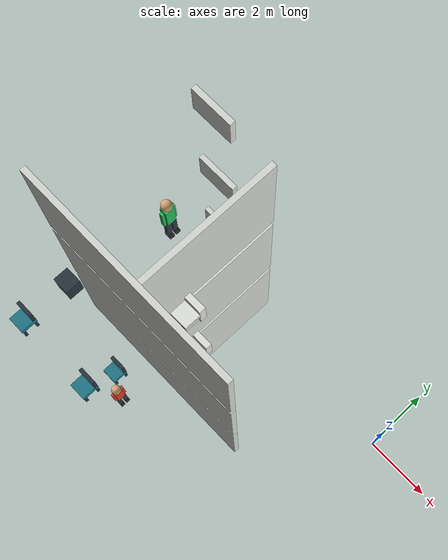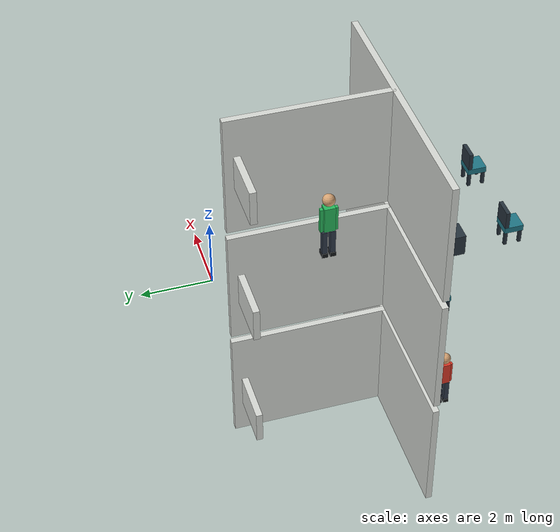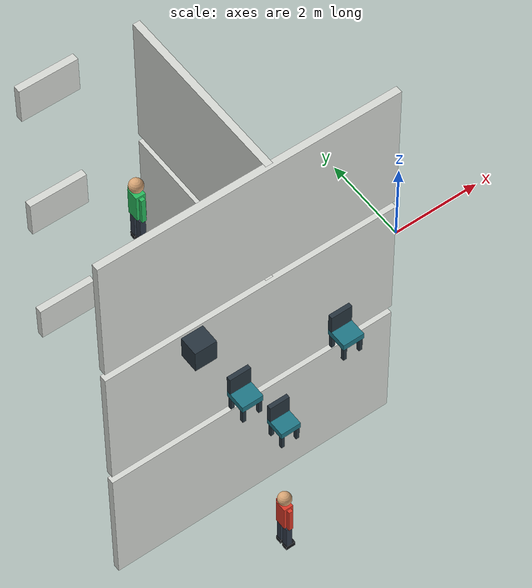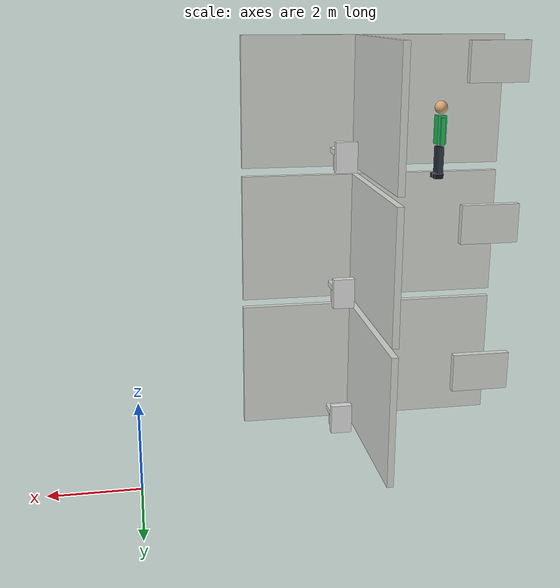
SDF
<sdf version="1.6">
 <world name="three_floor">
  <model name="f1_wall_018">
   <static>true</static>
   <pose>-5.7 -3 1.5 0 0 0</pose>
   <link name="f1_wall_018_link">
    <collision name="f1_wall_018_collision"><geometry><box><size>6.2 0.15 3</size></box></geometry></collision>
    <visual name="f1_wall_018_visual">
     <geometry><box><size>6.2 0.15 3</size></box></geometry>
     <material><ambient>.84 .85 .83 1</ambient><diffuse>.84 .85 .83 1</diffuse></material>
    </visual>
   </link>
  </model>
  <model name="f1_wall_020">
   <static>true</static>
   <pose>-5.3 -1.1 1.5 0 0 0</pose>
   <link name="f1_wall_020_link">
    <collision name="f1_wall_020_collision"><geometry><box><size>0.15 3.8 3</size></box></geometry></collision>
    <visual name="f1_wall_020_visual">
     <geometry><box><size>0.15 3.8 3</size></box></geometry>
     <material><ambient>.84 .85 .83 1</ambient><diffuse>.84 .85 .83 1</diffuse></material>
    </visual>
   </link>
  </model>
  <model name="f1_lintel_south_west_1">
   <static>true</static>
   <pose>-7.15 0.8 2.6 0 0 0</pose>
   <link name="f1_lintel_south_west_1_link">
    <collision name="f1_lintel_south_west_1_collision">
     <geometry><box><size>1.2 0.15 0.8</size></box></geometry>
    </collision>
    <visual name="f1_lintel_south_west_1_visual">
     <geometry><box><size>1.2 0.15 0.8</size></box></geometry>
     <material><ambient>.84 .85 .83 1</ambient><diffuse>.84 .85 .83 1</diffuse></material>
    </visual>
   </link>
  </model>
  <model name="f2_wall_018">
   <static>true</static>
   <pose>-5.7 -3 4.7 0 0 0</pose>
   <link name="f2_wall_018_link">
    <collision name="f2_wall_018_collision"><geometry><box><size>6.2 0.15 3</size></box></geometry></collision>
    <visual name="f2_wall_018_visual">
     <geometry><box><size>6.2 0.15 3</size></box></geometry>
     <material><ambient>.84 .85 .83 1</ambient><diffuse>.84 .85 .83 1</diffuse></material>
    </visual>
   </link>
  </model>
  <model name="f2_wall_020">
   <static>true</static>
   <pose>-5.3 -1.1 4.7 0 0 0</pose>
   <link name="f2_wall_020_link">
    <collision name="f2_wall_020_collision"><geometry><box><size>0.15 3.8 3</size></box></geometry></collision>
    <visual name="f2_wall_020_visual">
     <geometry><box><size>0.15 3.8 3</size></box></geometry>
     <material><ambient>.84 .85 .83 1</ambient><diffuse>.84 .85 .83 1</diffuse></material>
    </visual>
   </link>
  </model>
  <model name="f2_lintel_south_west_1">
   <static>true</static>
   <pose>-7.15 0.8 5.8 0 0 0</pose>
   <link name="f2_lintel_south_west_1_link">
    <collision name="f2_lintel_south_west_1_collision">
     <geometry><box><size>1.2 0.15 0.8</size></box></geometry>
    </collision>
    <visual name="f2_lintel_south_west_1_visual">
     <geometry><box><size>1.2 0.15 0.8</size></box></geometry>
     <material><ambient>.84 .85 .83 1</ambient><diffuse>.84 .85 .83 1</diffuse></material>
    </visual>
   </link>
  </model>
  <model name="f3_wall_018">
   <static>true</static>
   <pose>-5.7 -3 7.9 0 0 0</pose>
   <link name="f3_wall_018_link">
    <collision name="f3_wall_018_collision"><geometry><box><size>6.2 0.15 3</size></box></geometry></collision>
    <visual name="f3_wall_018_visual">
     <geometry><box><size>6.2 0.15 3</size></box></geometry>
     <material><ambient>.84 .85 .83 1</ambient><diffuse>.84 .85 .83 1</diffuse></material>
    </visual>
   </link>
  </model>
  <model name="f3_wall_020">
   <static>true</static>
   <pose>-5.3 -1.1 7.9 0 0 0</pose>
   <link name="f3_wall_020_link">
    <collision name="f3_wall_020_collision"><geometry><box><size>0.15 3.8 3</size></box></geometry></collision>
    <visual name="f3_wall_020_visual">
     <geometry><box><size>0.15 3.8 3</size></box></geometry>
     <material><ambient>.84 .85 .83 1</ambient><diffuse>.84 .85 .83 1</diffuse></material>
    </visual>
   </link>
  </model>
  <model name="f3_lintel_south_west_1">
   <static>true</static>
   <pose>-7.15 0.8 9 0 0 0</pose>
   <link name="f3_lintel_south_west_1_link">
    <collision name="f3_lintel_south_west_1_collision">
     <geometry><box><size>1.2 0.15 0.8</size></box></geometry>
    </collision>
    <visual name="f3_lintel_south_west_1_visual">
     <geometry><box><size>1.2 0.15 0.8</size></box></geometry>
     <material><ambient>.84 .85 .83 1</ambient><diffuse>.84 .85 .83 1</diffuse></material>
    </visual>
   </link>
  </model>
  <model name="f1_s2_furniture_08_toilet">
   <static>true</static>
   <pose>-4.85 -2.25 0 0 0 0</pose>
   <link name="f1_s2_furniture_08_toilet_link">
    <collision name="f1_s2_furniture_08_toilet_link_base_collision">
     <pose>0 0 0.22 0 0 0</pose>
     <geometry><box><size>0.375 0.52 0.44</size></box></geometry>
    </collision>
    <visual name="f1_s2_furniture_08_toilet_link_base_visual">
     <pose>0 0 0.22 0 0 0</pose>
     <geometry><box><size>0.375 0.52 0.44</size></box></geometry>
     <material><ambient>0.88 0.89 0.88 1</ambient><diffuse>0.88 0.89 0.88 1</diffuse></material>
    </visual>
    <collision name="f1_s2_furniture_08_toilet_link_bowl_collision">
     <pose>0 -0.08 0.45 0 0 0</pose>
     <geometry><box><size>0.5 0.455 0.12</size></box></geometry>
    </collision>
    <visual name="f1_s2_furniture_08_toilet_link_bowl_visual">
     <pose>0 -0.08 0.45 0 0 0</pose>
     <geometry><box><size>0.5 0.455 0.12</size></box></geometry>
     <material><ambient>0.88 0.89 0.88 1</ambient><diffuse>0.88 0.89 0.88 1</diffuse></material>
    </visual>
    <collision name="f1_s2_furniture_08_toilet_link_cistern_collision">
     <pose>0 0.2275 0.35 0 0 0</pose>
     <geometry><box><size>0.5 0.18 0.7</size></box></geometry>
    </collision>
    <visual name="f1_s2_furniture_08_toilet_link_cistern_visual">
     <pose>0 0.2275 0.35 0 0 0</pose>
     <geometry><box><size>0.5 0.18 0.7</size></box></geometry>
     <material><ambient>0.88 0.89 0.88 1</ambient><diffuse>0.88 0.89 0.88 1</diffuse></material>
    </visual>
   </link>
  </model>
  <model name="f2_s2_furniture_31_seat">
   <static>true</static>
   <pose>-5.85 -4.17 3.2 0 0 0</pose>
   <link name="f2_s2_furniture_31_seat_link">
    <collision name="f2_s2_furniture_31_seat_link_seat_collision">
     <pose>0 0 0.4 0 0 0</pose>
     <geometry><box><size>0.42 0.42 0.14</size></box></geometry>
    </collision>
    <visual name="f2_s2_furniture_31_seat_link_seat_visual">
     <pose>0 0 0.4 0 0 0</pose>
     <geometry><box><size>0.42 0.42 0.14</size></box></geometry>
     <material><ambient>0.12 0.46 0.52 1</ambient><diffuse>0.12 0.46 0.52 1</diffuse></material>
    </visual>
    <collision name="f2_s2_furniture_31_seat_link_back_collision">
     <pose>0 0.165 0.68 0 0 0</pose>
     <geometry><box><size>0.42 0.09 0.42</size></box></geometry>
    </collision>
    <visual name="f2_s2_furniture_31_seat_link_back_visual">
     <pose>0 0.165 0.68 0 0 0</pose>
     <geometry><box><size>0.42 0.09 0.42</size></box></geometry>
     <material><ambient>0.15 0.2 0.24 1</ambient><diffuse>0.15 0.2 0.24 1</diffuse></material>
    </visual>
    <collision name="f2_s2_furniture_31_seat_link_leg_-0.15999999999999998_-0.15999999999999998_collision">
     <pose>-0.16 -0.16 0.165 0 0 0</pose>
     <geometry><box><size>0.07 0.07 0.33</size></box></geometry>
    </collision>
    <visual name="f2_s2_furniture_31_seat_link_leg_-0.15999999999999998_-0.15999999999999998_visual">
     <pose>-0.16 -0.16 0.165 0 0 0</pose>
     <geometry><box><size>0.07 0.07 0.33</size></box></geometry>
     <material><ambient>0.15 0.2 0.24 1</ambient><diffuse>0.15 0.2 0.24 1</diffuse></material>
    </visual>
    <collision name="f2_s2_furniture_31_seat_link_leg_-0.15999999999999998_0.15999999999999998_collision">
     <pose>-0.16 0.16 0.165 0 0 0</pose>
     <geometry><box><size>0.07 0.07 0.33</size></box></geometry>
    </collision>
    <visual name="f2_s2_furniture_31_seat_link_leg_-0.15999999999999998_0.15999999999999998_visual">
     <pose>-0.16 0.16 0.165 0 0 0</pose>
     <geometry><box><size>0.07 0.07 0.33</size></box></geometry>
     <material><ambient>0.15 0.2 0.24 1</ambient><diffuse>0.15 0.2 0.24 1</diffuse></material>
    </visual>
    <collision name="f2_s2_furniture_31_seat_link_leg_0.15999999999999998_-0.15999999999999998_collision">
     <pose>0.16 -0.16 0.165 0 0 0</pose>
     <geometry><box><size>0.07 0.07 0.33</size></box></geometry>
    </collision>
    <visual name="f2_s2_furniture_31_seat_link_leg_0.15999999999999998_-0.15999999999999998_visual">
     <pose>0.16 -0.16 0.165 0 0 0</pose>
     <geometry><box><size>0.07 0.07 0.33</size></box></geometry>
     <material><ambient>0.15 0.2 0.24 1</ambient><diffuse>0.15 0.2 0.24 1</diffuse></material>
    </visual>
    <collision name="f2_s2_furniture_31_seat_link_leg_0.15999999999999998_0.15999999999999998_collision">
     <pose>0.16 0.16 0.165 0 0 0</pose>
     <geometry><box><size>0.07 0.07 0.33</size></box></geometry>
    </collision>
    <visual name="f2_s2_furniture_31_seat_link_leg_0.15999999999999998_0.15999999999999998_visual">
     <pose>0.16 0.16 0.165 0 0 0</pose>
     <geometry><box><size>0.07 0.07 0.33</size></box></geometry>
     <material><ambient>0.15 0.2 0.24 1</ambient><diffuse>0.15 0.2 0.24 1</diffuse></material>
    </visual>
   </link>
  </model>
  <model name="f2_s2_furniture_34_toilet">
   <static>true</static>
   <pose>-4.85 -2.25 3.2 0 0 0</pose>
   <link name="f2_s2_furniture_34_toilet_link">
    <collision name="f2_s2_furniture_34_toilet_link_base_collision">
     <pose>0 0 0.22 0 0 0</pose>
     <geometry><box><size>0.375 0.52 0.44</size></box></geometry>
    </collision>
    <visual name="f2_s2_furniture_34_toilet_link_base_visual">
     <pose>0 0 0.22 0 0 0</pose>
     <geometry><box><size>0.375 0.52 0.44</size></box></geometry>
     <material><ambient>0.88 0.89 0.88 1</ambient><diffuse>0.88 0.89 0.88 1</diffuse></material>
    </visual>
    <collision name="f2_s2_furniture_34_toilet_link_bowl_collision">
     <pose>0 -0.08 0.45 0 0 0</pose>
     <geometry><box><size>0.5 0.455 0.12</size></box></geometry>
    </collision>
    <visual name="f2_s2_furniture_34_toilet_link_bowl_visual">
     <pose>0 -0.08 0.45 0 0 0</pose>
     <geometry><box><size>0.5 0.455 0.12</size></box></geometry>
     <material><ambient>0.88 0.89 0.88 1</ambient><diffuse>0.88 0.89 0.88 1</diffuse></material>
    </visual>
    <collision name="f2_s2_furniture_34_toilet_link_cistern_collision">
     <pose>0 0.2275 0.35 0 0 0</pose>
     <geometry><box><size>0.5 0.18 0.7</size></box></geometry>
    </collision>
    <visual name="f2_s2_furniture_34_toilet_link_cistern_visual">
     <pose>0 0.2275 0.35 0 0 0</pose>
     <geometry><box><size>0.5 0.18 0.7</size></box></geometry>
     <material><ambient>0.88 0.89 0.88 1</ambient><diffuse>0.88 0.89 0.88 1</diffuse></material>
    </visual>
   </link>
  </model>
  <model name="f3_s2_furniture_57_seat">
   <static>true</static>
   <pose>-7.3 -5.03 6.4 0 0 0</pose>
   <link name="f3_s2_furniture_57_seat_link">
    <collision name="f3_s2_furniture_57_seat_link_seat_collision">
     <pose>0 0 0.4 0 0 0</pose>
     <geometry><box><size>0.43 0.43 0.14</size></box></geometry>
    </collision>
    <visual name="f3_s2_furniture_57_seat_link_seat_visual">
     <pose>0 0 0.4 0 0 0</pose>
     <geometry><box><size>0.43 0.43 0.14</size></box></geometry>
     <material><ambient>0.12 0.46 0.52 1</ambient><diffuse>0.12 0.46 0.52 1</diffuse></material>
    </visual>
    <collision name="f3_s2_furniture_57_seat_link_back_collision">
     <pose>0 0.17 0.675 0 0 0</pose>
     <geometry><box><size>0.43 0.09 0.41</size></box></geometry>
    </collision>
    <visual name="f3_s2_furniture_57_seat_link_back_visual">
     <pose>0 0.17 0.675 0 0 0</pose>
     <geometry><box><size>0.43 0.09 0.41</size></box></geometry>
     <material><ambient>0.15 0.2 0.24 1</ambient><diffuse>0.15 0.2 0.24 1</diffuse></material>
    </visual>
    <collision name="f3_s2_furniture_57_seat_link_leg_-0.16499999999999998_-0.16499999999999998_collision">
     <pose>-0.165 -0.165 0.165 0 0 0</pose>
     <geometry><box><size>0.07 0.07 0.33</size></box></geometry>
    </collision>
    <visual name="f3_s2_furniture_57_seat_link_leg_-0.16499999999999998_-0.16499999999999998_visual">
     <pose>-0.165 -0.165 0.165 0 0 0</pose>
     <geometry><box><size>0.07 0.07 0.33</size></box></geometry>
     <material><ambient>0.15 0.2 0.24 1</ambient><diffuse>0.15 0.2 0.24 1</diffuse></material>
    </visual>
    <collision name="f3_s2_furniture_57_seat_link_leg_-0.16499999999999998_0.16499999999999998_collision">
     <pose>-0.165 0.165 0.165 0 0 0</pose>
     <geometry><box><size>0.07 0.07 0.33</size></box></geometry>
    </collision>
    <visual name="f3_s2_furniture_57_seat_link_leg_-0.16499999999999998_0.16499999999999998_visual">
     <pose>-0.165 0.165 0.165 0 0 0</pose>
     <geometry><box><size>0.07 0.07 0.33</size></box></geometry>
     <material><ambient>0.15 0.2 0.24 1</ambient><diffuse>0.15 0.2 0.24 1</diffuse></material>
    </visual>
    <collision name="f3_s2_furniture_57_seat_link_leg_0.16499999999999998_-0.16499999999999998_collision">
     <pose>0.165 -0.165 0.165 0 0 0</pose>
     <geometry><box><size>0.07 0.07 0.33</size></box></geometry>
    </collision>
    <visual name="f3_s2_furniture_57_seat_link_leg_0.16499999999999998_-0.16499999999999998_visual">
     <pose>0.165 -0.165 0.165 0 0 0</pose>
     <geometry><box><size>0.07 0.07 0.33</size></box></geometry>
     <material><ambient>0.15 0.2 0.24 1</ambient><diffuse>0.15 0.2 0.24 1</diffuse></material>
    </visual>
    <collision name="f3_s2_furniture_57_seat_link_leg_0.16499999999999998_0.16499999999999998_collision">
     <pose>0.165 0.165 0.165 0 0 0</pose>
     <geometry><box><size>0.07 0.07 0.33</size></box></geometry>
    </collision>
    <visual name="f3_s2_furniture_57_seat_link_leg_0.16499999999999998_0.16499999999999998_visual">
     <pose>0.165 0.165 0.165 0 0 0</pose>
     <geometry><box><size>0.07 0.07 0.33</size></box></geometry>
     <material><ambient>0.15 0.2 0.24 1</ambient><diffuse>0.15 0.2 0.24 1</diffuse></material>
    </visual>
   </link>
  </model>
  <model name="f3_s2_furniture_59_seat">
   <static>true</static>
   <pose>-5.2 -5.03 6.4 0 0 0</pose>
   <link name="f3_s2_furniture_59_seat_link">
    <collision name="f3_s2_furniture_59_seat_link_seat_collision">
     <pose>0 0 0.4 0 0 0</pose>
     <geometry><box><size>0.43 0.43 0.14</size></box></geometry>
    </collision>
    <visual name="f3_s2_furniture_59_seat_link_seat_visual">
     <pose>0 0 0.4 0 0 0</pose>
     <geometry><box><size>0.43 0.43 0.14</size></box></geometry>
     <material><ambient>0.12 0.46 0.52 1</ambient><diffuse>0.12 0.46 0.52 1</diffuse></material>
    </visual>
    <collision name="f3_s2_furniture_59_seat_link_back_collision">
     <pose>0 0.17 0.675 0 0 0</pose>
     <geometry><box><size>0.43 0.09 0.41</size></box></geometry>
    </collision>
    <visual name="f3_s2_furniture_59_seat_link_back_visual">
     <pose>0 0.17 0.675 0 0 0</pose>
     <geometry><box><size>0.43 0.09 0.41</size></box></geometry>
     <material><ambient>0.15 0.2 0.24 1</ambient><diffuse>0.15 0.2 0.24 1</diffuse></material>
    </visual>
    <collision name="f3_s2_furniture_59_seat_link_leg_-0.16499999999999998_-0.16499999999999998_collision">
     <pose>-0.165 -0.165 0.165 0 0 0</pose>
     <geometry><box><size>0.07 0.07 0.33</size></box></geometry>
    </collision>
    <visual name="f3_s2_furniture_59_seat_link_leg_-0.16499999999999998_-0.16499999999999998_visual">
     <pose>-0.165 -0.165 0.165 0 0 0</pose>
     <geometry><box><size>0.07 0.07 0.33</size></box></geometry>
     <material><ambient>0.15 0.2 0.24 1</ambient><diffuse>0.15 0.2 0.24 1</diffuse></material>
    </visual>
    <collision name="f3_s2_furniture_59_seat_link_leg_-0.16499999999999998_0.16499999999999998_collision">
     <pose>-0.165 0.165 0.165 0 0 0</pose>
     <geometry><box><size>0.07 0.07 0.33</size></box></geometry>
    </collision>
    <visual name="f3_s2_furniture_59_seat_link_leg_-0.16499999999999998_0.16499999999999998_visual">
     <pose>-0.165 0.165 0.165 0 0 0</pose>
     <geometry><box><size>0.07 0.07 0.33</size></box></geometry>
     <material><ambient>0.15 0.2 0.24 1</ambient><diffuse>0.15 0.2 0.24 1</diffuse></material>
    </visual>
    <collision name="f3_s2_furniture_59_seat_link_leg_0.16499999999999998_-0.16499999999999998_collision">
     <pose>0.165 -0.165 0.165 0 0 0</pose>
     <geometry><box><size>0.07 0.07 0.33</size></box></geometry>
    </collision>
    <visual name="f3_s2_furniture_59_seat_link_leg_0.16499999999999998_-0.16499999999999998_visual">
     <pose>0.165 -0.165 0.165 0 0 0</pose>
     <geometry><box><size>0.07 0.07 0.33</size></box></geometry>
     <material><ambient>0.15 0.2 0.24 1</ambient><diffuse>0.15 0.2 0.24 1</diffuse></material>
    </visual>
    <collision name="f3_s2_furniture_59_seat_link_leg_0.16499999999999998_0.16499999999999998_collision">
     <pose>0.165 0.165 0.165 0 0 0</pose>
     <geometry><box><size>0.07 0.07 0.33</size></box></geometry>
    </collision>
    <visual name="f3_s2_furniture_59_seat_link_leg_0.16499999999999998_0.16499999999999998_visual">
     <pose>0.165 0.165 0.165 0 0 0</pose>
     <geometry><box><size>0.07 0.07 0.33</size></box></geometry>
     <material><ambient>0.15 0.2 0.24 1</ambient><diffuse>0.15 0.2 0.24 1</diffuse></material>
    </visual>
   </link>
  </model>
  <model name="f3_s2_furniture_63_toilet">
   <static>true</static>
   <pose>-4.85 -2.25 6.4 0 0 0</pose>
   <link name="f3_s2_furniture_63_toilet_link">
    <collision name="f3_s2_furniture_63_toilet_link_base_collision">
     <pose>0 0 0.22 0 0 0</pose>
     <geometry><box><size>0.375 0.52 0.44</size></box></geometry>
    </collision>
    <visual name="f3_s2_furniture_63_toilet_link_base_visual">
     <pose>0 0 0.22 0 0 0</pose>
     <geometry><box><size>0.375 0.52 0.44</size></box></geometry>
     <material><ambient>0.88 0.89 0.88 1</ambient><diffuse>0.88 0.89 0.88 1</diffuse></material>
    </visual>
    <collision name="f3_s2_furniture_63_toilet_link_bowl_collision">
     <pose>0 -0.08 0.45 0 0 0</pose>
     <geometry><box><size>0.5 0.455 0.12</size></box></geometry>
    </collision>
    <visual name="f3_s2_furniture_63_toilet_link_bowl_visual">
     <pose>0 -0.08 0.45 0 0 0</pose>
     <geometry><box><size>0.5 0.455 0.12</size></box></geometry>
     <material><ambient>0.88 0.89 0.88 1</ambient><diffuse>0.88 0.89 0.88 1</diffuse></material>
    </visual>
    <collision name="f3_s2_furniture_63_toilet_link_cistern_collision">
     <pose>0 0.2275 0.35 0 0 0</pose>
     <geometry><box><size>0.5 0.18 0.7</size></box></geometry>
    </collision>
    <visual name="f3_s2_furniture_63_toilet_link_cistern_visual">
     <pose>0 0.2275 0.35 0 0 0</pose>
     <geometry><box><size>0.5 0.18 0.7</size></box></geometry>
     <material><ambient>0.88 0.89 0.88 1</ambient><diffuse>0.88 0.89 0.88 1</diffuse></material>
    </visual>
   </link>
  </model>
  <model name="f3_s2_furniture_78_box">
   <static>true</static>
   <pose>-7.3 -3.72 6.4 0 0 0</pose>
   <link name="f3_s2_furniture_78_box_link">
    <collision name="f3_s2_furniture_78_box_link_body_collision">
     <pose>0 0 0.25 0 0 0</pose>
     <geometry><box><size>0.45 0.4 0.5</size></box></geometry>
    </collision>
    <visual name="f3_s2_furniture_78_box_link_body_visual">
     <pose>0 0 0.25 0 0 0</pose>
     <geometry><box><size>0.45 0.4 0.5</size></box></geometry>
     <material><ambient>0.15 0.2 0.24 1</ambient><diffuse>0.15 0.2 0.24 1</diffuse></material>
    </visual>
   </link>
  </model>
  <model name="f1_pedestrian">
   <static>true</static>
   <pose>-6 -4.4 0.0 0 0 0</pose>
   <link name="f1_pedestrian_link">
    <collision name="pedestrian_solid">
     <pose>0 0 0.85 0 0 0</pose>
     <geometry><box><size>.36 .42 1.7</size></box></geometry>
    </collision>
    <visual name="head">
     <pose>0 0 1.53 0 0 0</pose>
     <geometry><sphere><radius>0.14</radius></sphere></geometry>
     <material><ambient>0.85 0.65 0.46 1</ambient><diffuse>0.85 0.65 0.46 1</diffuse></material>
    </visual>
    <visual name="torso">
     <pose>0 0 1.05 0 0 0</pose>
     <geometry><box><size>0.2 0.25 0.62</size></box></geometry>
     <material><ambient>0.85 0.22 0.15 1</ambient><diffuse>0.85 0.22 0.15 1</diffuse></material>
    </visual>
    <visual name="arm-1">
     <pose>0 -0.165 1.02 0 0 0</pose>
     <geometry><box><size>0.09 0.07 0.6</size></box></geometry>
     <material><ambient>0.85 0.22 0.15 1</ambient><diffuse>0.85 0.22 0.15 1</diffuse></material>
    </visual>
    <visual name="leg-1">
     <pose>0 -0.09 0.36 0 0 0</pose>
     <geometry><box><size>0.12 0.12 0.65</size></box></geometry>
     <material><ambient>0.18 0.22 0.28 1</ambient><diffuse>0.18 0.22 0.28 1</diffuse></material>
    </visual>
    <visual name="shoe-1">
     <pose>0.03 -0.09 0.055 0 0 0</pose>
     <geometry><box><size>0.2 0.13 0.11</size></box></geometry>
     <material><ambient>0.08 0.09 0.1 1</ambient><diffuse>0.08 0.09 0.1 1</diffuse></material>
    </visual>
    <visual name="arm1">
     <pose>0 0.165 1.02 0 0 0</pose>
     <geometry><box><size>0.09 0.07 0.6</size></box></geometry>
     <material><ambient>0.85 0.22 0.15 1</ambient><diffuse>0.85 0.22 0.15 1</diffuse></material>
    </visual>
    <visual name="leg1">
     <pose>0 0.09 0.36 0 0 0</pose>
     <geometry><box><size>0.12 0.12 0.65</size></box></geometry>
     <material><ambient>0.18 0.22 0.28 1</ambient><diffuse>0.18 0.22 0.28 1</diffuse></material>
    </visual>
    <visual name="shoe1">
     <pose>0.03 0.09 0.055 0 0 0</pose>
     <geometry><box><size>0.2 0.13 0.11</size></box></geometry>
     <material><ambient>0.08 0.09 0.1 1</ambient><diffuse>0.08 0.09 0.1 1</diffuse></material>
    </visual>
   </link>
   <plugin name="pedestrian_patrol" filename="libscene_controller.so">
    <speed>0.8</speed>
    <start_delay>5.0</start_delay>
    <initial_direction>forward</initial_direction>
    <waypoint><position>-6 -4.4 0.0</position><pause>2</pause></waypoint>
    <waypoint><position>-3.4 -4.8 0.0</position><pause>0</pause></waypoint>
    <waypoint><position>0 -4.8 0.0</position><pause>0.5</pause></waypoint>
    <waypoint><position>0 1.9 0.0</position><pause>0</pause></waypoint>
    <waypoint><position>6.8 1.9 0.0</position><pause>0.5</pause></waypoint>
    <waypoint><position>6.8 4.5 0.0</position><pause>2</pause></waypoint>
   </plugin>
  </model>
  <model name="f3_pedestrian">
   <static>true</static>
   <pose>-6.7 -1.1 6.4 0 0 0</pose>
   <link name="f3_pedestrian_link">
    <collision name="pedestrian_solid">
     <pose>0 0 0.85 0 0 0</pose>
     <geometry><box><size>.36 .42 1.7</size></box></geometry>
    </collision>
    <visual name="head">
     <pose>0 0 1.53 0 0 0</pose>
     <geometry><sphere><radius>0.14</radius></sphere></geometry>
     <material><ambient>0.85 0.65 0.46 1</ambient><diffuse>0.85 0.65 0.46 1</diffuse></material>
    </visual>
    <visual name="torso">
     <pose>0 0 1.05 0 0 0</pose>
     <geometry><box><size>0.2 0.25 0.62</size></box></geometry>
     <material><ambient>0.15 0.72 0.36 1</ambient><diffuse>0.15 0.72 0.36 1</diffuse></material>
    </visual>
    <visual name="arm-1">
     <pose>0 -0.165 1.02 0 0 0</pose>
     <geometry><box><size>0.09 0.07 0.6</size></box></geometry>
     <material><ambient>0.15 0.72 0.36 1</ambient><diffuse>0.15 0.72 0.36 1</diffuse></material>
    </visual>
    <visual name="leg-1">
     <pose>0 -0.09 0.36 0 0 0</pose>
     <geometry><box><size>0.12 0.12 0.65</size></box></geometry>
     <material><ambient>0.18 0.22 0.28 1</ambient><diffuse>0.18 0.22 0.28 1</diffuse></material>
    </visual>
    <visual name="shoe-1">
     <pose>0.03 -0.09 0.055 0 0 0</pose>
     <geometry><box><size>0.2 0.13 0.11</size></box></geometry>
     <material><ambient>0.08 0.09 0.1 1</ambient><diffuse>0.08 0.09 0.1 1</diffuse></material>
    </visual>
    <visual name="arm1">
     <pose>0 0.165 1.02 0 0 0</pose>
     <geometry><box><size>0.09 0.07 0.6</size></box></geometry>
     <material><ambient>0.15 0.72 0.36 1</ambient><diffuse>0.15 0.72 0.36 1</diffuse></material>
    </visual>
    <visual name="leg1">
     <pose>0 0.09 0.36 0 0 0</pose>
     <geometry><box><size>0.12 0.12 0.65</size></box></geometry>
     <material><ambient>0.18 0.22 0.28 1</ambient><diffuse>0.18 0.22 0.28 1</diffuse></material>
    </visual>
    <visual name="shoe1">
     <pose>0.03 0.09 0.055 0 0 0</pose>
     <geometry><box><size>0.2 0.13 0.11</size></box></geometry>
     <material><ambient>0.08 0.09 0.1 1</ambient><diffuse>0.08 0.09 0.1 1</diffuse></material>
    </visual>
   </link>
   <plugin name="pedestrian_patrol" filename="libscene_controller.so">
    <speed>0.7</speed>
    <start_delay>7.0</start_delay>
    <initial_direction>forward</initial_direction>
    <waypoint><position>-6.7 -1.1 6.4</position><pause>2</pause></waypoint>
    <waypoint><position>-7.15 -1.1 6.4</position><pause>0</pause></waypoint>
    <waypoint><position>-7.15 2.58 6.4</position><pause>0.5</pause></waypoint>
    <waypoint><position>7.15 2.58 6.4</position><pause>0.5</pause></waypoint>
    <waypoint><position>7.15 -0.55 6.4</position><pause>2</pause></waypoint>
   </plugin>
  </model>
 </world>
</sdf>
